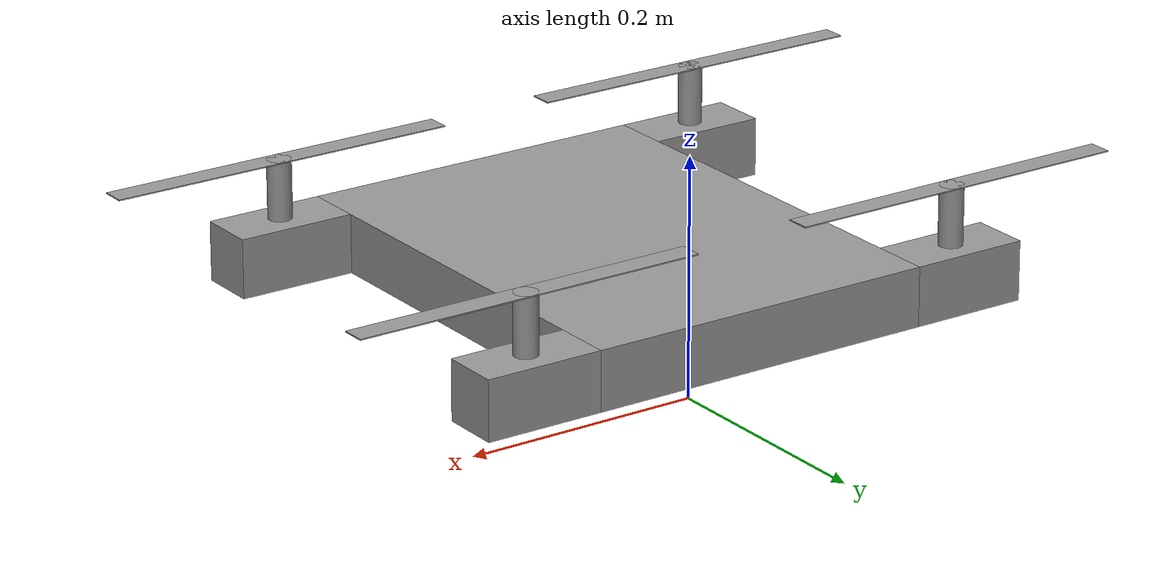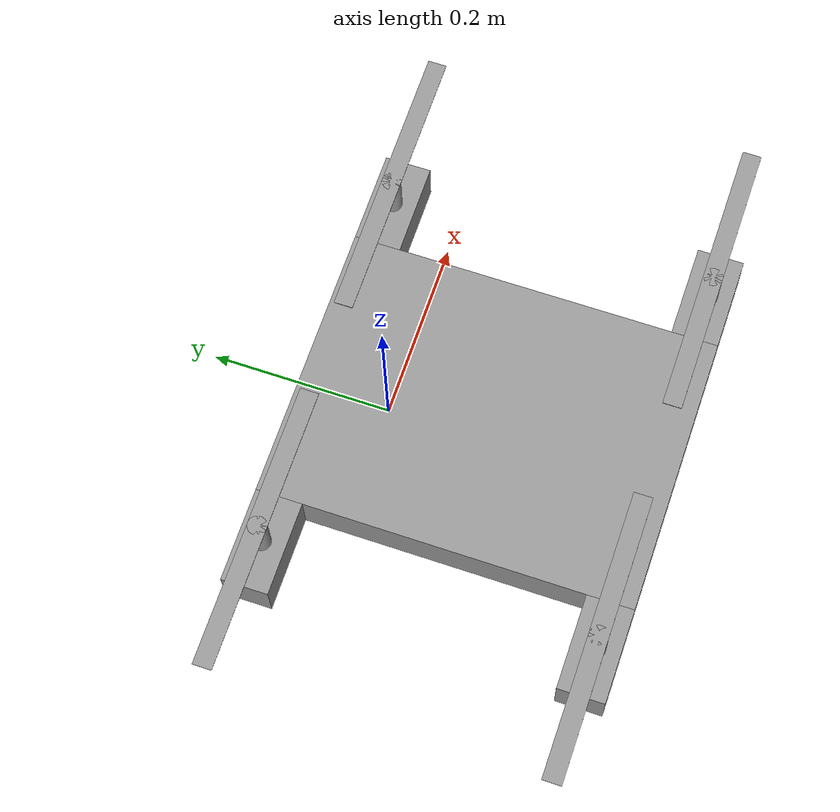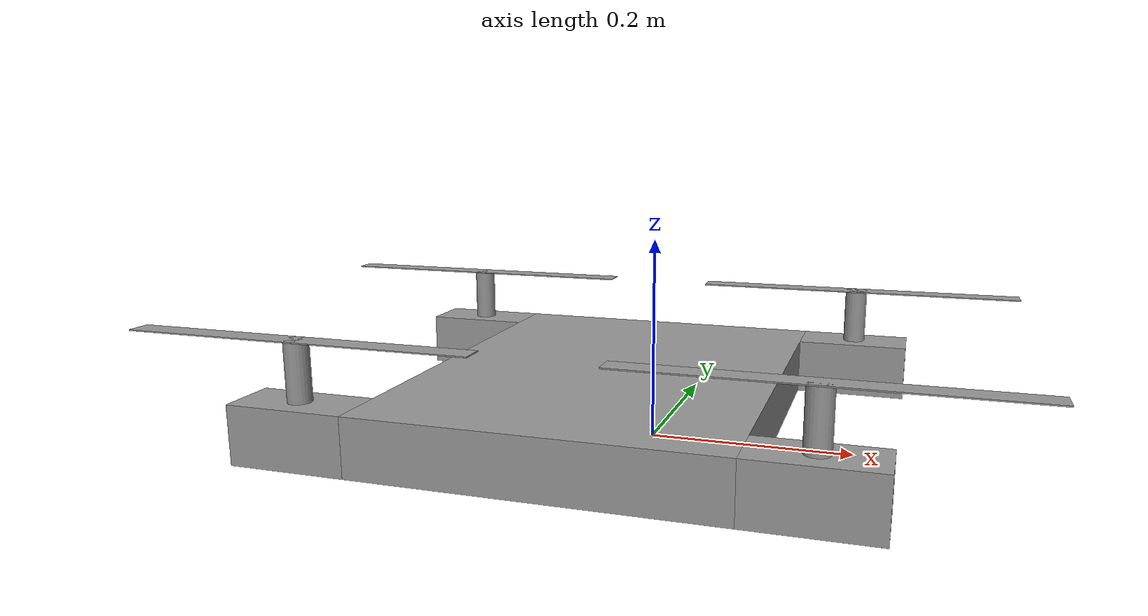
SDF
<?xml version='1.0'?>
<sdf version='1.6'>
  <model name='drone_model1'>
    <link name='link_0'>
      <pose frame=''>-0.009538 -0.116587 0.075926 0 -0 0</pose>
      <inertial>
        <mass>1</mass>
        <inertia>
          <ixx>0.166667</ixx>
          <ixy>0</ixy>
          <ixz>0</ixz>
          <iyy>0.166667</iyy>
          <iyz>0</iyz>
          <izz>0.166667</izz>
        </inertia>
        <pose frame=''>0 0 0 0 -0 0</pose>
      </inertial>
      <self_collide>0</self_collide>
      <kinematic>0</kinematic>
      <visual name='visual'>
        <pose frame=''>0 0 0 0 -0 0</pose>
        <geometry>
          <box>
            <size>0.3 0.4 0.05</size>
          </box>
        </geometry>
        <material>
          <lighting>1</lighting>
          <script>
            <uri>file://media/materials/scripts/gazebo.material</uri>
            <name>Gazebo/Grey</name>
          </script>
          <shader type='pixel'>
            <normal_map>__default__</normal_map>
          </shader>
          <ambient>0.3 0.3 0.3 1</ambient>
          <diffuse>0.7 0.7 0.7 1</diffuse>
          <specular>0.01 0.01 0.01 1</specular>
          <emissive>0 0 0 1</emissive>
        </material>
        <transparency>0</transparency>
        <cast_shadows>1</cast_shadows>
      </visual>
      <collision name='collision'>
        <laser_retro>0</laser_retro>
        <max_contacts>10</max_contacts>
        <pose frame=''>0 0 0 0 -0 0</pose>
        <geometry>
          <box>
            <size>0.3 0.4 0.05</size>
          </box>
        </geometry>
        <surface>
          <friction>
            <ode>
              <mu>1</mu>
              <mu2>1</mu2>
              <fdir1>0 0 0</fdir1>
              <slip1>0</slip1>
              <slip2>0</slip2>
            </ode>
            <torsional>
              <coefficient>1</coefficient>
              <patch_radius>0</patch_radius>
              <surface_radius>0</surface_radius>
              <use_patch_radius>1</use_patch_radius>
              <ode>
                <slip>0</slip>
              </ode>
            </torsional>
          </friction>
          <bounce>
            <restitution_coefficient>0</restitution_coefficient>
            <threshold>1e+06</threshold>
          </bounce>
          <contact>
            <collide_without_contact>0</collide_without_contact>
            <collide_without_contact_bitmask>1</collide_without_contact_bitmask>
            <collide_bitmask>1</collide_bitmask>
            <ode>
              <soft_cfm>0</soft_cfm>
              <soft_erp>0.2</soft_erp>
              <kp>1e+13</kp>
              <kd>1</kd>
              <max_vel>0.01</max_vel>
              <min_depth>0</min_depth>
            </ode>
            <bullet>
              <split_impulse>1</split_impulse>
              <split_impulse_penetration_threshold>-0.01</split_impulse_penetration_threshold>
              <soft_cfm>0</soft_cfm>
              <soft_erp>0.2</soft_erp>
              <kp>1e+13</kp>
              <kd>1</kd>
            </bullet>
          </contact>
        </surface>
      </collision>
    </link>
    <link name='link_0_0'>
      <pose frame=''>-0.209538 -0.291587 0.150426 0 -0 0</pose>
      <inertial>
        <mass>1</mass>
        <inertia>
          <ixx>0.166667</ixx>
          <ixy>0</ixy>
          <ixz>0</ixz>
          <iyy>0.166667</iyy>
          <iyz>0</iyz>
          <izz>0.166667</izz>
        </inertia>
        <pose frame=''>0 0 0 0 -0 0</pose>
      </inertial>
      <self_collide>0</self_collide>
      <kinematic>0</kinematic>
      <visual name='visual'>
        <pose frame=''>0 0 0 0 -0 0</pose>
        <geometry>
          <box>
            <size>0.3 0.02 0.001</size>
          </box>
        </geometry>
        <material>
          <lighting>1</lighting>
          <script>
            <uri>file://media/materials/scripts/gazebo.material</uri>
            <name>Gazebo/Grey</name>
          </script>
          <shader type='pixel'>
            <normal_map>__default__</normal_map>
          </shader>
          <ambient>0.3 0.3 0.3 1</ambient>
          <diffuse>0.7 0.7 0.7 1</diffuse>
          <specular>0.01 0.01 0.01 1</specular>
          <emissive>0 0 0 1</emissive>
        </material>
        <transparency>0</transparency>
        <cast_shadows>1</cast_shadows>
      </visual>
      <collision name='collision'>
        <laser_retro>0</laser_retro>
        <max_contacts>10</max_contacts>
        <pose frame=''>0 0 0 0 -0 0</pose>
        <geometry>
          <box>
            <size>0.3 0.02 0.001</size>
          </box>
        </geometry>
        <surface>
          <friction>
            <ode>
              <mu>1</mu>
              <mu2>1</mu2>
              <fdir1>0 0 0</fdir1>
              <slip1>0</slip1>
              <slip2>0</slip2>
            </ode>
            <torsional>
              <coefficient>1</coefficient>
              <patch_radius>0</patch_radius>
              <surface_radius>0</surface_radius>
              <use_patch_radius>1</use_patch_radius>
              <ode>
                <slip>0</slip>
              </ode>
            </torsional>
          </friction>
          <bounce>
            <restitution_coefficient>0</restitution_coefficient>
            <threshold>1e+06</threshold>
          </bounce>
          <contact>
            <collide_without_contact>0</collide_without_contact>
            <collide_without_contact_bitmask>1</collide_without_contact_bitmask>
            <collide_bitmask>1</collide_bitmask>
            <ode>
              <soft_cfm>0</soft_cfm>
              <soft_erp>0.2</soft_erp>
              <kp>1e+13</kp>
              <kd>1</kd>
              <max_vel>0.01</max_vel>
              <min_depth>0</min_depth>
            </ode>
            <bullet>
              <split_impulse>1</split_impulse>
              <split_impulse_penetration_threshold>-0.01</split_impulse_penetration_threshold>
              <soft_cfm>0</soft_cfm>
              <soft_erp>0.2</soft_erp>
              <kp>1e+13</kp>
              <kd>1</kd>
            </bullet>
          </contact>
        </surface>
      </collision>
    </link>
    <link name='link_0_0_clone'>
      <pose frame=''>0.190462 -0.291587 0.150426 0 -0 0</pose>
      <inertial>
        <mass>1</mass>
        <inertia>
          <ixx>0.166667</ixx>
          <ixy>0</ixy>
          <ixz>0</ixz>
          <iyy>0.166667</iyy>
          <iyz>0</iyz>
          <izz>0.166667</izz>
        </inertia>
        <pose frame=''>0 0 0 0 -0 0</pose>
      </inertial>
      <self_collide>0</self_collide>
      <kinematic>0</kinematic>
      <visual name='visual_0'>
        <pose frame=''>0 0 0 0 -0 0</pose>
        <geometry>
          <box>
            <size>0.3 0.02 0.001</size>
          </box>
        </geometry>
        <material>
          <lighting>1</lighting>
          <script>
            <uri>file://media/materials/scripts/gazebo.material</uri>
            <name>Gazebo/Grey</name>
          </script>
          <shader type='pixel'>
            <normal_map>__default__</normal_map>
          </shader>
          <ambient>0.3 0.3 0.3 1</ambient>
          <diffuse>0.7 0.7 0.7 1</diffuse>
          <specular>0.01 0.01 0.01 1</specular>
          <emissive>0 0 0 1</emissive>
        </material>
        <transparency>0</transparency>
        <cast_shadows>1</cast_shadows>
      </visual>
      <collision name='collision'>
        <laser_retro>0</laser_retro>
        <max_contacts>10</max_contacts>
        <pose frame=''>0 0 0 0 -0 0</pose>
        <geometry>
          <box>
            <size>0.3 0.02 0.001</size>
          </box>
        </geometry>
        <surface>
          <friction>
            <ode>
              <mu>1</mu>
              <mu2>1</mu2>
              <fdir1>0 0 0</fdir1>
              <slip1>0</slip1>
              <slip2>0</slip2>
            </ode>
            <torsional>
              <coefficient>1</coefficient>
              <patch_radius>0</patch_radius>
              <surface_radius>0</surface_radius>
              <use_patch_radius>1</use_patch_radius>
              <ode>
                <slip>0</slip>
              </ode>
            </torsional>
          </friction>
          <bounce>
            <restitution_coefficient>0</restitution_coefficient>
            <threshold>1e+06</threshold>
          </bounce>
          <contact>
            <collide_without_contact>0</collide_without_contact>
            <collide_without_contact_bitmask>1</collide_without_contact_bitmask>
            <collide_bitmask>1</collide_bitmask>
            <ode>
              <soft_cfm>0</soft_cfm>
              <soft_erp>0.2</soft_erp>
              <kp>1e+13</kp>
              <kd>1</kd>
              <max_vel>0.01</max_vel>
              <min_depth>0</min_depth>
            </ode>
            <bullet>
              <split_impulse>1</split_impulse>
              <split_impulse_penetration_threshold>-0.01</split_impulse_penetration_threshold>
              <soft_cfm>0</soft_cfm>
              <soft_erp>0.2</soft_erp>
              <kp>1e+13</kp>
              <kd>1</kd>
            </bullet>
          </contact>
        </surface>
      </collision>
    </link>
    <link name='link_0_0_clone_clone'>
      <pose frame=''>0.190462 0.058413 0.150426 0 -0 0</pose>
      <inertial>
        <mass>1</mass>
        <inertia>
          <ixx>0.166667</ixx>
          <ixy>0</ixy>
          <ixz>0</ixz>
          <iyy>0.166667</iyy>
          <iyz>0</iyz>
          <izz>0.166667</izz>
        </inertia>
        <pose frame=''>0 0 0 0 -0 0</pose>
      </inertial>
      <self_collide>0</self_collide>
      <kinematic>0</kinematic>
      <visual name='visual_0'>
        <pose frame=''>0 0 0 0 -0 0</pose>
        <geometry>
          <box>
            <size>0.3 0.02 0.001</size>
          </box>
        </geometry>
        <material>
          <lighting>1</lighting>
          <script>
            <uri>file://media/materials/scripts/gazebo.material</uri>
            <name>Gazebo/Grey</name>
          </script>
          <shader type='pixel'>
            <normal_map>__default__</normal_map>
          </shader>
          <ambient>0.3 0.3 0.3 1</ambient>
          <diffuse>0.7 0.7 0.7 1</diffuse>
          <specular>0.01 0.01 0.01 1</specular>
          <emissive>0 0 0 1</emissive>
        </material>
        <transparency>0</transparency>
        <cast_shadows>1</cast_shadows>
      </visual>
      <collision name='collision'>
        <laser_retro>0</laser_retro>
        <max_contacts>10</max_contacts>
        <pose frame=''>0 0 0 0 -0 0</pose>
        <geometry>
          <box>
            <size>0.3 0.02 0.001</size>
          </box>
        </geometry>
        <surface>
          <friction>
            <ode>
              <mu>1</mu>
              <mu2>1</mu2>
              <fdir1>0 0 0</fdir1>
              <slip1>0</slip1>
              <slip2>0</slip2>
            </ode>
            <torsional>
              <coefficient>1</coefficient>
              <patch_radius>0</patch_radius>
              <surface_radius>0</surface_radius>
              <use_patch_radius>1</use_patch_radius>
              <ode>
                <slip>0</slip>
              </ode>
            </torsional>
          </friction>
          <bounce>
            <restitution_coefficient>0</restitution_coefficient>
            <threshold>1e+06</threshold>
          </bounce>
          <contact>
            <collide_without_contact>0</collide_without_contact>
            <collide_without_contact_bitmask>1</collide_without_contact_bitmask>
            <collide_bitmask>1</collide_bitmask>
            <ode>
              <soft_cfm>0</soft_cfm>
              <soft_erp>0.2</soft_erp>
              <kp>1e+13</kp>
              <kd>1</kd>
              <max_vel>0.01</max_vel>
              <min_depth>0</min_depth>
            </ode>
            <bullet>
              <split_impulse>1</split_impulse>
              <split_impulse_penetration_threshold>-0.01</split_impulse_penetration_threshold>
              <soft_cfm>0</soft_cfm>
              <soft_erp>0.2</soft_erp>
              <kp>1e+13</kp>
              <kd>1</kd>
            </bullet>
          </contact>
        </surface>
      </collision>
    </link>
    <link name='link_0_0_clone_clone_0'>
      <pose frame=''>-0.209538 0.058413 0.150426 0 -0 0</pose>
      <inertial>
        <mass>1</mass>
        <inertia>
          <ixx>0.166667</ixx>
          <ixy>0</ixy>
          <ixz>0</ixz>
          <iyy>0.166667</iyy>
          <iyz>0</iyz>
          <izz>0.166667</izz>
        </inertia>
        <pose frame=''>0 0 0 0 -0 0</pose>
      </inertial>
      <self_collide>0</self_collide>
      <kinematic>0</kinematic>
      <visual name='visual_0'>
        <pose frame=''>0 0 0 0 -0 0</pose>
        <geometry>
          <box>
            <size>0.3 0.02 0.001</size>
          </box>
        </geometry>
        <material>
          <lighting>1</lighting>
          <script>
            <uri>file://media/materials/scripts/gazebo.material</uri>
            <name>Gazebo/Grey</name>
          </script>
          <shader type='pixel'>
            <normal_map>__default__</normal_map>
          </shader>
          <ambient>0.3 0.3 0.3 1</ambient>
          <diffuse>0.7 0.7 0.7 1</diffuse>
          <specular>0.01 0.01 0.01 1</specular>
          <emissive>0 0 0 1</emissive>
        </material>
        <transparency>0</transparency>
        <cast_shadows>1</cast_shadows>
      </visual>
      <collision name='collision'>
        <laser_retro>0</laser_retro>
        <max_contacts>10</max_contacts>
        <pose frame=''>0 0 0 0 -0 0</pose>
        <geometry>
          <box>
            <size>0.3 0.02 0.001</size>
          </box>
        </geometry>
        <surface>
          <friction>
            <ode>
              <mu>1</mu>
              <mu2>1</mu2>
              <fdir1>0 0 0</fdir1>
              <slip1>0</slip1>
              <slip2>0</slip2>
            </ode>
            <torsional>
              <coefficient>1</coefficient>
              <patch_radius>0</patch_radius>
              <surface_radius>0</surface_radius>
              <use_patch_radius>1</use_patch_radius>
              <ode>
                <slip>0</slip>
              </ode>
            </torsional>
          </friction>
          <bounce>
            <restitution_coefficient>0</restitution_coefficient>
            <threshold>1e+06</threshold>
          </bounce>
          <contact>
            <collide_without_contact>0</collide_without_contact>
            <collide_without_contact_bitmask>1</collide_without_contact_bitmask>
            <collide_bitmask>1</collide_bitmask>
            <ode>
              <soft_cfm>0</soft_cfm>
              <soft_erp>0.2</soft_erp>
              <kp>1e+13</kp>
              <kd>1</kd>
              <max_vel>0.01</max_vel>
              <min_depth>0</min_depth>
            </ode>
            <bullet>
              <split_impulse>1</split_impulse>
              <split_impulse_penetration_threshold>-0.01</split_impulse_penetration_threshold>
              <soft_cfm>0</soft_cfm>
              <soft_erp>0.2</soft_erp>
              <kp>1e+13</kp>
              <kd>1</kd>
            </bullet>
          </contact>
        </surface>
      </collision>
    </link>
    <link name='link_1'>
      <pose frame=''>0.190462 -0.291587 0.075926 0 -0 0</pose>
      <inertial>
        <mass>1</mass>
        <inertia>
          <ixx>0.166667</ixx>
          <ixy>0</ixy>
          <ixz>0</ixz>
          <iyy>0.166667</iyy>
          <iyz>0</iyz>
          <izz>0.166667</izz>
        </inertia>
        <pose frame=''>0 0 0 0 -0 0</pose>
      </inertial>
      <self_collide>0</self_collide>
      <kinematic>0</kinematic>
      <visual name='visual'>
        <pose frame=''>0 0 0 0 -0 0</pose>
        <geometry>
          <box>
            <size>0.1 0.05 0.05</size>
          </box>
        </geometry>
        <material>
          <lighting>1</lighting>
          <script>
            <uri>file://media/materials/scripts/gazebo.material</uri>
            <name>Gazebo/Grey</name>
          </script>
          <shader type='pixel'>
            <normal_map>__default__</normal_map>
          </shader>
          <ambient>0.3 0.3 0.3 1</ambient>
          <diffuse>0.7 0.7 0.7 1</diffuse>
          <specular>0.01 0.01 0.01 1</specular>
          <emissive>0 0 0 1</emissive>
        </material>
        <transparency>0</transparency>
        <cast_shadows>1</cast_shadows>
      </visual>
      <collision name='collision'>
        <laser_retro>0</laser_retro>
        <max_contacts>10</max_contacts>
        <pose frame=''>0 0 0 0 -0 0</pose>
        <geometry>
          <box>
            <size>0.1 0.05 0.05</size>
          </box>
        </geometry>
        <surface>
          <friction>
            <ode>
              <mu>1</mu>
              <mu2>1</mu2>
              <fdir1>0 0 0</fdir1>
              <slip1>0</slip1>
              <slip2>0</slip2>
            </ode>
            <torsional>
              <coefficient>1</coefficient>
              <patch_radius>0</patch_radius>
              <surface_radius>0</surface_radius>
              <use_patch_radius>1</use_patch_radius>
              <ode>
                <slip>0</slip>
              </ode>
            </torsional>
          </friction>
          <bounce>
            <restitution_coefficient>0</restitution_coefficient>
            <threshold>1e+06</threshold>
          </bounce>
          <contact>
            <collide_without_contact>0</collide_without_contact>
            <collide_without_contact_bitmask>1</collide_without_contact_bitmask>
            <collide_bitmask>1</collide_bitmask>
            <ode>
              <soft_cfm>0</soft_cfm>
              <soft_erp>0.2</soft_erp>
              <kp>1e+13</kp>
              <kd>1</kd>
              <max_vel>0.01</max_vel>
              <min_depth>0</min_depth>
            </ode>
            <bullet>
              <split_impulse>1</split_impulse>
              <split_impulse_penetration_threshold>-0.01</split_impulse_penetration_threshold>
              <soft_cfm>0</soft_cfm>
              <soft_erp>0.2</soft_erp>
              <kp>1e+13</kp>
              <kd>1</kd>
            </bullet>
          </contact>
        </surface>
      </collision>
    </link>
    <link name='link_1_clone'>
      <pose frame=''>-0.209538 -0.291587 0.075926 0 -0 0</pose>
      <inertial>
        <mass>1</mass>
        <inertia>
          <ixx>0.166667</ixx>
          <ixy>0</ixy>
          <ixz>0</ixz>
          <iyy>0.166667</iyy>
          <iyz>0</iyz>
          <izz>0.166667</izz>
        </inertia>
        <pose frame=''>0 0 0 0 -0 0</pose>
      </inertial>
      <self_collide>0</self_collide>
      <kinematic>0</kinematic>
      <visual name='visual'>
        <pose frame=''>0 0 0 0 -0 0</pose>
        <geometry>
          <box>
            <size>0.1 0.05 0.05</size>
          </box>
        </geometry>
        <material>
          <lighting>1</lighting>
          <script>
            <uri>file://media/materials/scripts/gazebo.material</uri>
            <name>Gazebo/Grey</name>
          </script>
          <shader type='pixel'>
            <normal_map>__default__</normal_map>
          </shader>
          <ambient>0.3 0.3 0.3 1</ambient>
          <diffuse>0.7 0.7 0.7 1</diffuse>
          <specular>0.01 0.01 0.01 1</specular>
          <emissive>0 0 0 1</emissive>
        </material>
        <transparency>0</transparency>
        <cast_shadows>1</cast_shadows>
      </visual>
      <collision name='collision'>
        <laser_retro>0</laser_retro>
        <max_contacts>10</max_contacts>
        <pose frame=''>0 0 0 0 -0 0</pose>
        <geometry>
          <box>
            <size>0.1 0.05 0.05</size>
          </box>
        </geometry>
        <surface>
          <friction>
            <ode>
              <mu>1</mu>
              <mu2>1</mu2>
              <fdir1>0 0 0</fdir1>
              <slip1>0</slip1>
              <slip2>0</slip2>
            </ode>
            <torsional>
              <coefficient>1</coefficient>
              <patch_radius>0</patch_radius>
              <surface_radius>0</surface_radius>
              <use_patch_radius>1</use_patch_radius>
              <ode>
                <slip>0</slip>
              </ode>
            </torsional>
          </friction>
          <bounce>
            <restitution_coefficient>0</restitution_coefficient>
            <threshold>1e+06</threshold>
          </bounce>
          <contact>
            <collide_without_contact>0</collide_without_contact>
            <collide_without_contact_bitmask>1</collide_without_contact_bitmask>
            <collide_bitmask>1</collide_bitmask>
            <ode>
              <soft_cfm>0</soft_cfm>
              <soft_erp>0.2</soft_erp>
              <kp>1e+13</kp>
              <kd>1</kd>
              <max_vel>0.01</max_vel>
              <min_depth>0</min_depth>
            </ode>
            <bullet>
              <split_impulse>1</split_impulse>
              <split_impulse_penetration_threshold>-0.01</split_impulse_penetration_threshold>
              <soft_cfm>0</soft_cfm>
              <soft_erp>0.2</soft_erp>
              <kp>1e+13</kp>
              <kd>1</kd>
            </bullet>
          </contact>
        </surface>
      </collision>
    </link>
    <link name='link_1_clone_0'>
      <pose frame=''>-0.209538 0.058413 0.075926 0 -0 0</pose>
      <inertial>
        <mass>1</mass>
        <inertia>
          <ixx>0.166667</ixx>
          <ixy>0</ixy>
          <ixz>0</ixz>
          <iyy>0.166667</iyy>
          <iyz>0</iyz>
          <izz>0.166667</izz>
        </inertia>
        <pose frame=''>0 0 0 0 -0 0</pose>
      </inertial>
      <self_collide>0</self_collide>
      <kinematic>0</kinematic>
      <visual name='visual'>
        <pose frame=''>0 0 0 0 -0 0</pose>
        <geometry>
          <box>
            <size>0.1 0.05 0.05</size>
          </box>
        </geometry>
        <material>
          <lighting>1</lighting>
          <script>
            <uri>file://media/materials/scripts/gazebo.material</uri>
            <name>Gazebo/Grey</name>
          </script>
          <shader type='pixel'>
            <normal_map>__default__</normal_map>
          </shader>
          <ambient>0.3 0.3 0.3 1</ambient>
          <diffuse>0.7 0.7 0.7 1</diffuse>
          <specular>0.01 0.01 0.01 1</specular>
          <emissive>0 0 0 1</emissive>
        </material>
        <transparency>0</transparency>
        <cast_shadows>1</cast_shadows>
      </visual>
      <collision name='collision'>
        <laser_retro>0</laser_retro>
        <max_contacts>10</max_contacts>
        <pose frame=''>0 0 0 0 -0 0</pose>
        <geometry>
          <box>
            <size>0.1 0.05 0.05</size>
          </box>
        </geometry>
        <surface>
          <friction>
            <ode>
              <mu>1</mu>
              <mu2>1</mu2>
              <fdir1>0 0 0</fdir1>
              <slip1>0</slip1>
              <slip2>0</slip2>
            </ode>
            <torsional>
              <coefficient>1</coefficient>
              <patch_radius>0</patch_radius>
              <surface_radius>0</surface_radius>
              <use_patch_radius>1</use_patch_radius>
              <ode>
                <slip>0</slip>
              </ode>
            </torsional>
          </friction>
          <bounce>
            <restitution_coefficient>0</restitution_coefficient>
            <threshold>1e+06</threshold>
          </bounce>
          <contact>
            <collide_without_contact>0</collide_without_contact>
            <collide_without_contact_bitmask>1</collide_without_contact_bitmask>
            <collide_bitmask>1</collide_bitmask>
            <ode>
              <soft_cfm>0</soft_cfm>
              <soft_erp>0.2</soft_erp>
              <kp>1e+13</kp>
              <kd>1</kd>
              <max_vel>0.01</max_vel>
              <min_depth>0</min_depth>
            </ode>
            <bullet>
              <split_impulse>1</split_impulse>
              <split_impulse_penetration_threshold>-0.01</split_impulse_penetration_threshold>
              <soft_cfm>0</soft_cfm>
              <soft_erp>0.2</soft_erp>
              <kp>1e+13</kp>
              <kd>1</kd>
            </bullet>
          </contact>
        </surface>
      </collision>
    </link>
    <link name='link_1_clone_1'>
      <pose frame=''>0.190462 0.058413 0.075926 0 -0 0</pose>
      <inertial>
        <mass>1</mass>
        <inertia>
          <ixx>0.166667</ixx>
          <ixy>0</ixy>
          <ixz>0</ixz>
          <iyy>0.166667</iyy>
          <iyz>0</iyz>
          <izz>0.166667</izz>
        </inertia>
        <pose frame=''>0 0 0 0 -0 0</pose>
      </inertial>
      <self_collide>0</self_collide>
      <kinematic>0</kinematic>
      <visual name='visual'>
        <pose frame=''>0 0 0 0 -0 0</pose>
        <geometry>
          <box>
            <size>0.1 0.05 0.05</size>
          </box>
        </geometry>
        <material>
          <lighting>1</lighting>
          <script>
            <uri>file://media/materials/scripts/gazebo.material</uri>
            <name>Gazebo/Grey</name>
          </script>
          <shader type='pixel'>
            <normal_map>__default__</normal_map>
          </shader>
          <ambient>0.3 0.3 0.3 1</ambient>
          <diffuse>0.7 0.7 0.7 1</diffuse>
          <specular>0.01 0.01 0.01 1</specular>
          <emissive>0 0 0 1</emissive>
        </material>
        <transparency>0</transparency>
        <cast_shadows>1</cast_shadows>
      </visual>
      <collision name='collision'>
        <laser_retro>0</laser_retro>
        <max_contacts>10</max_contacts>
        <pose frame=''>0 0 0 0 -0 0</pose>
        <geometry>
          <box>
            <size>0.1 0.05 0.05</size>
          </box>
        </geometry>
        <surface>
          <friction>
            <ode>
              <mu>1</mu>
              <mu2>1</mu2>
              <fdir1>0 0 0</fdir1>
              <slip1>0</slip1>
              <slip2>0</slip2>
            </ode>
            <torsional>
              <coefficient>1</coefficient>
              <patch_radius>0</patch_radius>
              <surface_radius>0</surface_radius>
              <use_patch_radius>1</use_patch_radius>
              <ode>
                <slip>0</slip>
              </ode>
            </torsional>
          </friction>
          <bounce>
            <restitution_coefficient>0</restitution_coefficient>
            <threshold>1e+06</threshold>
          </bounce>
          <contact>
            <collide_without_contact>0</collide_without_contact>
            <collide_without_contact_bitmask>1</collide_without_contact_bitmask>
            <collide_bitmask>1</collide_bitmask>
            <ode>
              <soft_cfm>0</soft_cfm>
              <soft_erp>0.2</soft_erp>
              <kp>1e+13</kp>
              <kd>1</kd>
              <max_vel>0.01</max_vel>
              <min_depth>0</min_depth>
            </ode>
            <bullet>
              <split_impulse>1</split_impulse>
              <split_impulse_penetration_threshold>-0.01</split_impulse_penetration_threshold>
              <soft_cfm>0</soft_cfm>
              <soft_erp>0.2</soft_erp>
              <kp>1e+13</kp>
              <kd>1</kd>
            </bullet>
          </contact>
        </surface>
      </collision>
    </link>
    <link name='link_2'>
      <pose frame=''>0.190462 -0.291587 0.125926 0 -0 0</pose>
      <inertial>
        <mass>1</mass>
        <inertia>
          <ixx>0.145833</ixx>
          <ixy>0</ixy>
          <ixz>0</ixz>
          <iyy>0.145833</iyy>
          <iyz>0</iyz>
          <izz>0.125</izz>
        </inertia>
        <pose frame=''>0 0 0 0 -0 0</pose>
      </inertial>
      <self_collide>0</self_collide>
      <kinematic>0</kinematic>
      <visual name='visual'>
        <pose frame=''>0 0 0 0 -0 0</pose>
        <geometry>
          <cylinder>
            <radius>0.01</radius>
            <length>0.05</length>
          </cylinder>
        </geometry>
        <material>
          <lighting>1</lighting>
          <script>
            <uri>file://media/materials/scripts/gazebo.material</uri>
            <name>Gazebo/Grey</name>
          </script>
          <shader type='pixel'>
            <normal_map>__default__</normal_map>
          </shader>
          <ambient>0.3 0.3 0.3 1</ambient>
          <diffuse>0.7 0.7 0.7 1</diffuse>
          <specular>0.01 0.01 0.01 1</specular>
          <emissive>0 0 0 1</emissive>
        </material>
        <transparency>0</transparency>
        <cast_shadows>1</cast_shadows>
      </visual>
      <collision name='collision'>
        <laser_retro>0</laser_retro>
        <max_contacts>10</max_contacts>
        <pose frame=''>0 0 0 0 -0 0</pose>
        <geometry>
          <cylinder>
            <radius>0.01</radius>
            <length>0.05</length>
          </cylinder>
        </geometry>
        <surface>
          <friction>
            <ode>
              <mu>1</mu>
              <mu2>1</mu2>
              <fdir1>0 0 0</fdir1>
              <slip1>0</slip1>
              <slip2>0</slip2>
            </ode>
            <torsional>
              <coefficient>1</coefficient>
              <patch_radius>0</patch_radius>
              <surface_radius>0</surface_radius>
              <use_patch_radius>1</use_patch_radius>
              <ode>
                <slip>0</slip>
              </ode>
            </torsional>
          </friction>
          <bounce>
            <restitution_coefficient>0</restitution_coefficient>
            <threshold>1e+06</threshold>
          </bounce>
          <contact>
            <collide_without_contact>0</collide_without_contact>
            <collide_without_contact_bitmask>1</collide_without_contact_bitmask>
            <collide_bitmask>1</collide_bitmask>
            <ode>
              <soft_cfm>0</soft_cfm>
              <soft_erp>0.2</soft_erp>
              <kp>1e+13</kp>
              <kd>1</kd>
              <max_vel>0.01</max_vel>
              <min_depth>0</min_depth>
            </ode>
            <bullet>
              <split_impulse>1</split_impulse>
              <split_impulse_penetration_threshold>-0.01</split_impulse_penetration_threshold>
              <soft_cfm>0</soft_cfm>
              <soft_erp>0.2</soft_erp>
              <kp>1e+13</kp>
              <kd>1</kd>
            </bullet>
          </contact>
        </surface>
      </collision>
    </link>
    <link name='link_2_clone'>
      <pose frame=''>-0.209538 0.058413 0.125926 0 -0 0</pose>
      <inertial>
        <mass>1</mass>
        <inertia>
          <ixx>0.145833</ixx>
          <ixy>0</ixy>
          <ixz>0</ixz>
          <iyy>0.145833</iyy>
          <iyz>0</iyz>
          <izz>0.125</izz>
        </inertia>
        <pose frame=''>0 0 0 0 -0 0</pose>
      </inertial>
      <self_collide>0</self_collide>
      <kinematic>0</kinematic>
      <visual name='visual'>
        <pose frame=''>0 0 0 0 -0 0</pose>
        <geometry>
          <cylinder>
            <radius>0.01</radius>
            <length>0.05</length>
          </cylinder>
        </geometry>
        <material>
          <lighting>1</lighting>
          <script>
            <uri>file://media/materials/scripts/gazebo.material</uri>
            <name>Gazebo/Grey</name>
          </script>
          <shader type='pixel'>
            <normal_map>__default__</normal_map>
          </shader>
          <ambient>0.3 0.3 0.3 1</ambient>
          <diffuse>0.7 0.7 0.7 1</diffuse>
          <specular>0.01 0.01 0.01 1</specular>
          <emissive>0 0 0 1</emissive>
        </material>
        <transparency>0</transparency>
        <cast_shadows>1</cast_shadows>
      </visual>
      <collision name='collision'>
        <laser_retro>0</laser_retro>
        <max_contacts>10</max_contacts>
        <pose frame=''>0 0 0 0 -0 0</pose>
        <geometry>
          <cylinder>
            <radius>0.01</radius>
            <length>0.05</length>
          </cylinder>
        </geometry>
        <surface>
          <friction>
            <ode>
              <mu>1</mu>
              <mu2>1</mu2>
              <fdir1>0 0 0</fdir1>
              <slip1>0</slip1>
              <slip2>0</slip2>
            </ode>
            <torsional>
              <coefficient>1</coefficient>
              <patch_radius>0</patch_radius>
              <surface_radius>0</surface_radius>
              <use_patch_radius>1</use_patch_radius>
              <ode>
                <slip>0</slip>
              </ode>
            </torsional>
          </friction>
          <bounce>
            <restitution_coefficient>0</restitution_coefficient>
            <threshold>1e+06</threshold>
          </bounce>
          <contact>
            <collide_without_contact>0</collide_without_contact>
            <collide_without_contact_bitmask>1</collide_without_contact_bitmask>
            <collide_bitmask>1</collide_bitmask>
            <ode>
              <soft_cfm>0</soft_cfm>
              <soft_erp>0.2</soft_erp>
              <kp>1e+13</kp>
              <kd>1</kd>
              <max_vel>0.01</max_vel>
              <min_depth>0</min_depth>
            </ode>
            <bullet>
              <split_impulse>1</split_impulse>
              <split_impulse_penetration_threshold>-0.01</split_impulse_penetration_threshold>
              <soft_cfm>0</soft_cfm>
              <soft_erp>0.2</soft_erp>
              <kp>1e+13</kp>
              <kd>1</kd>
            </bullet>
          </contact>
        </surface>
      </collision>
    </link>
    <link name='link_2_clone_0'>
      <pose frame=''>0.190462 0.058413 0.125926 0 -0 0</pose>
      <inertial>
        <mass>1</mass>
        <inertia>
          <ixx>0.145833</ixx>
          <ixy>0</ixy>
          <ixz>0</ixz>
          <iyy>0.145833</iyy>
          <iyz>0</iyz>
          <izz>0.125</izz>
        </inertia>
        <pose frame=''>0 0 0 0 -0 0</pose>
      </inertial>
      <self_collide>0</self_collide>
      <kinematic>0</kinematic>
      <visual name='visual'>
        <pose frame=''>0 0 0 0 -0 0</pose>
        <geometry>
          <cylinder>
            <radius>0.01</radius>
            <length>0.05</length>
          </cylinder>
        </geometry>
        <material>
          <lighting>1</lighting>
          <script>
            <uri>file://media/materials/scripts/gazebo.material</uri>
            <name>Gazebo/Grey</name>
          </script>
          <shader type='pixel'>
            <normal_map>__default__</normal_map>
          </shader>
          <ambient>0.3 0.3 0.3 1</ambient>
          <diffuse>0.7 0.7 0.7 1</diffuse>
          <specular>0.01 0.01 0.01 1</specular>
          <emissive>0 0 0 1</emissive>
        </material>
        <transparency>0</transparency>
        <cast_shadows>1</cast_shadows>
      </visual>
      <collision name='collision'>
        <laser_retro>0</laser_retro>
        <max_contacts>10</max_contacts>
        <pose frame=''>0 0 0 0 -0 0</pose>
        <geometry>
          <cylinder>
            <radius>0.01</radius>
            <length>0.05</length>
          </cylinder>
        </geometry>
        <surface>
          <friction>
            <ode>
              <mu>1</mu>
              <mu2>1</mu2>
              <fdir1>0 0 0</fdir1>
              <slip1>0</slip1>
              <slip2>0</slip2>
            </ode>
            <torsional>
              <coefficient>1</coefficient>
              <patch_radius>0</patch_radius>
              <surface_radius>0</surface_radius>
              <use_patch_radius>1</use_patch_radius>
              <ode>
                <slip>0</slip>
              </ode>
            </torsional>
          </friction>
          <bounce>
            <restitution_coefficient>0</restitution_coefficient>
            <threshold>1e+06</threshold>
          </bounce>
          <contact>
            <collide_without_contact>0</collide_without_contact>
            <collide_without_contact_bitmask>1</collide_without_contact_bitmask>
            <collide_bitmask>1</collide_bitmask>
            <ode>
              <soft_cfm>0</soft_cfm>
              <soft_erp>0.2</soft_erp>
              <kp>1e+13</kp>
              <kd>1</kd>
              <max_vel>0.01</max_vel>
              <min_depth>0</min_depth>
            </ode>
            <bullet>
              <split_impulse>1</split_impulse>
              <split_impulse_penetration_threshold>-0.01</split_impulse_penetration_threshold>
              <soft_cfm>0</soft_cfm>
              <soft_erp>0.2</soft_erp>
              <kp>1e+13</kp>
              <kd>1</kd>
            </bullet>
          </contact>
        </surface>
      </collision>
    </link>
    <link name='link_2_clone_1'>
      <pose frame=''>-0.209538 -0.291587 0.125926 0 -0 0</pose>
      <inertial>
        <mass>1</mass>
        <inertia>
          <ixx>0.145833</ixx>
          <ixy>0</ixy>
          <ixz>0</ixz>
          <iyy>0.145833</iyy>
          <iyz>0</iyz>
          <izz>0.125</izz>
        </inertia>
        <pose frame=''>0 0 0 0 -0 0</pose>
      </inertial>
      <self_collide>0</self_collide>
      <kinematic>0</kinematic>
      <visual name='visual'>
        <pose frame=''>0 0 0 0 -0 0</pose>
        <geometry>
          <cylinder>
            <radius>0.01</radius>
            <length>0.05</length>
          </cylinder>
        </geometry>
        <material>
          <lighting>1</lighting>
          <script>
            <uri>file://media/materials/scripts/gazebo.material</uri>
            <name>Gazebo/Grey</name>
          </script>
          <shader type='pixel'>
            <normal_map>__default__</normal_map>
          </shader>
          <ambient>0.3 0.3 0.3 1</ambient>
          <diffuse>0.7 0.7 0.7 1</diffuse>
          <specular>0.01 0.01 0.01 1</specular>
          <emissive>0 0 0 1</emissive>
        </material>
        <transparency>0</transparency>
        <cast_shadows>1</cast_shadows>
      </visual>
      <collision name='collision'>
        <laser_retro>0</laser_retro>
        <max_contacts>10</max_contacts>
        <pose frame=''>0 0 0 0 -0 0</pose>
        <geometry>
          <cylinder>
            <radius>0.01</radius>
            <length>0.05</length>
          </cylinder>
        </geometry>
        <surface>
          <friction>
            <ode>
              <mu>1</mu>
              <mu2>1</mu2>
              <fdir1>0 0 0</fdir1>
              <slip1>0</slip1>
              <slip2>0</slip2>
            </ode>
            <torsional>
              <coefficient>1</coefficient>
              <patch_radius>0</patch_radius>
              <surface_radius>0</surface_radius>
              <use_patch_radius>1</use_patch_radius>
              <ode>
                <slip>0</slip>
              </ode>
            </torsional>
          </friction>
          <bounce>
            <restitution_coefficient>0</restitution_coefficient>
            <threshold>1e+06</threshold>
          </bounce>
          <contact>
            <collide_without_contact>0</collide_without_contact>
            <collide_without_contact_bitmask>1</collide_without_contact_bitmask>
            <collide_bitmask>1</collide_bitmask>
            <ode>
              <soft_cfm>0</soft_cfm>
              <soft_erp>0.2</soft_erp>
              <kp>1e+13</kp>
              <kd>1</kd>
              <max_vel>0.01</max_vel>
              <min_depth>0</min_depth>
            </ode>
            <bullet>
              <split_impulse>1</split_impulse>
              <split_impulse_penetration_threshold>-0.01</split_impulse_penetration_threshold>
              <soft_cfm>0</soft_cfm>
              <soft_erp>0.2</soft_erp>
              <kp>1e+13</kp>
              <kd>1</kd>
            </bullet>
          </contact>
        </surface>
      </collision>
    </link>
    <joint name='link_0_JOINT_5' type='fixed'>
      <parent>link_0</parent>
      <child>link_1</child>
      <pose frame=''>0 0 0 0 -0 0</pose>
      <physics>
        <ode>
          <limit>
            <cfm>0</cfm>
            <erp>0.2</erp>
          </limit>
          <suspension>
            <cfm>0</cfm>
            <erp>0.2</erp>
          </suspension>
        </ode>
      </physics>
    </joint>
    <joint name='link_0_JOINT_7' type='fixed'>
      <parent>link_0</parent>
      <child>link_1_clone_1</child>
      <pose frame=''>0 0 0 0 -0 0</pose>
      <physics>
        <ode>
          <limit>
            <cfm>0</cfm>
            <erp>0.2</erp>
          </limit>
          <suspension>
            <cfm>0</cfm>
            <erp>0.2</erp>
          </suspension>
        </ode>
      </physics>
    </joint>
    <joint name='link_0_JOINT_8' type='fixed'>
      <parent>link_0</parent>
      <child>link_1_clone_0</child>
      <pose frame=''>0 0 0 0 -0 0</pose>
      <physics>
        <ode>
          <limit>
            <cfm>0</cfm>
            <erp>0.2</erp>
          </limit>
          <suspension>
            <cfm>0</cfm>
            <erp>0.2</erp>
          </suspension>
        </ode>
      </physics>
    </joint>
    <joint name='link_0_JOINT_9' type='fixed'>
      <parent>link_0</parent>
      <child>link_1_clone</child>
      <pose frame=''>0 0 0 0 -0 0</pose>
      <physics>
        <ode>
          <limit>
            <cfm>0</cfm>
            <erp>0.2</erp>
          </limit>
          <suspension>
            <cfm>0</cfm>
            <erp>0.2</erp>
          </suspension>
        </ode>
      </physics>
    </joint>
    <joint name='link_1_JOINT_6' type='fixed'>
      <parent>link_1</parent>
      <child>link_2</child>
      <pose frame=''>0 0 0 0 -0 0</pose>
      <physics>
        <ode>
          <limit>
            <cfm>0</cfm>
            <erp>0.2</erp>
          </limit>
          <suspension>
            <cfm>0</cfm>
            <erp>0.2</erp>
          </suspension>
        </ode>
      </physics>
    </joint>
    <joint name='link_1_clone_0_JOINT_11' type='fixed'>
      <parent>link_1_clone_0</parent>
      <child>link_2_clone</child>
      <pose frame=''>0 0 0 0 -0 0</pose>
      <physics>
        <ode>
          <limit>
            <cfm>0</cfm>
            <erp>0.2</erp>
          </limit>
          <suspension>
            <cfm>0</cfm>
            <erp>0.2</erp>
          </suspension>
        </ode>
      </physics>
    </joint>
    <joint name='link_1_clone_1_JOINT_12' type='fixed'>
      <parent>link_1_clone_1</parent>
      <child>link_2_clone_0</child>
      <pose frame=''>0 0 0 0 -0 0</pose>
      <physics>
        <ode>
          <limit>
            <cfm>0</cfm>
            <erp>0.2</erp>
          </limit>
          <suspension>
            <cfm>0</cfm>
            <erp>0.2</erp>
          </suspension>
        </ode>
      </physics>
    </joint>
    <joint name='link_1_clone_JOINT_10' type='fixed'>
      <parent>link_1_clone</parent>
      <child>link_2_clone_1</child>
      <pose frame=''>0 0 0 0 -0 0</pose>
      <physics>
        <ode>
          <limit>
            <cfm>0</cfm>
            <erp>0.2</erp>
          </limit>
          <suspension>
            <cfm>0</cfm>
            <erp>0.2</erp>
          </suspension>
        </ode>
      </physics>
    </joint>
    <joint name='link_2_clone_0_JOINT_3' type='revolute'>
      <parent>link_2_clone_0</parent>
      <child>link_0_0_clone_clone</child>
      <pose frame=''>0 0 0 0 -0 0</pose>
      <axis>
        <xyz>0 0 1</xyz>
        <use_parent_model_frame>0</use_parent_model_frame>
        <limit>
          <lower>-1.79769e+308</lower>
          <upper>1.79769e+308</upper>
          <effort>-1</effort>
          <velocity>-1</velocity>
        </limit>
        <dynamics>
          <spring_reference>0</spring_reference>
          <spring_stiffness>0</spring_stiffness>
          <damping>0</damping>
          <friction>0</friction>
        </dynamics>
      </axis>
      <physics>
        <ode>
          <limit>
            <cfm>0</cfm>
            <erp>0.2</erp>
          </limit>
          <suspension>
            <cfm>0</cfm>
            <erp>0.2</erp>
          </suspension>
        </ode>
      </physics>
    </joint>
    <joint name='link_2_clone_1_JOINT_4' type='revolute'>
      <parent>link_2_clone_1</parent>
      <child>link_0_0</child>
      <pose frame=''>0 0 0 0 -0 0</pose>
      <axis>
        <xyz>0 0 1</xyz>
        <use_parent_model_frame>0</use_parent_model_frame>
        <limit>
          <lower>-1.79769e+308</lower>
          <upper>1.79769e+308</upper>
          <effort>-1</effort>
          <velocity>-1</velocity>
        </limit>
        <dynamics>
          <spring_reference>0</spring_reference>
          <spring_stiffness>0</spring_stiffness>
          <damping>0</damping>
          <friction>0</friction>
        </dynamics>
      </axis>
      <physics>
        <ode>
          <limit>
            <cfm>0</cfm>
            <erp>0.2</erp>
          </limit>
          <suspension>
            <cfm>0</cfm>
            <erp>0.2</erp>
          </suspension>
        </ode>
      </physics>
    </joint>
    <joint name='link_2_clone_JOINT_1' type='revolute'>
      <parent>link_2</parent>
      <child>link_0_0_clone</child>
      <pose frame=''>0 0 0 0 -0 0</pose>
      <axis>
        <xyz>0 0 1</xyz>
        <use_parent_model_frame>0</use_parent_model_frame>
        <limit>
          <lower>-1.79769e+308</lower>
          <upper>1.79769e+308</upper>
          <effort>-1</effort>
          <velocity>-1</velocity>
        </limit>
        <dynamics>
          <spring_reference>0</spring_reference>
          <spring_stiffness>0</spring_stiffness>
          <damping>0</damping>
          <friction>0</friction>
        </dynamics>
      </axis>
      <physics>
        <ode>
          <limit>
            <cfm>0</cfm>
            <erp>0.2</erp>
          </limit>
          <suspension>
            <cfm>0</cfm>
            <erp>0.2</erp>
          </suspension>
        </ode>
      </physics>
    </joint>
    <joint name='link_2_clone_JOINT_6' type='revolute'>
      <parent>link_2_clone</parent>
      <child>link_0_0_clone_clone_0</child>
      <pose frame=''>0 0 0 0 -0 0</pose>
      <axis>
        <xyz>0 0 1</xyz>
        <use_parent_model_frame>0</use_parent_model_frame>
        <limit>
          <lower>-1.79769e+308</lower>
          <upper>1.79769e+308</upper>
          <effort>-1</effort>
          <velocity>-1</velocity>
        </limit>
        <dynamics>
          <spring_reference>0</spring_reference>
          <spring_stiffness>0</spring_stiffness>
          <damping>0</damping>
          <friction>0</friction>
        </dynamics>
      </axis>
      <physics>
        <ode>
          <limit>
            <cfm>0</cfm>
            <erp>0.2</erp>
          </limit>
          <suspension>
            <cfm>0</cfm>
            <erp>0.2</erp>
          </suspension>
        </ode>
      </physics>
    </joint>
    <static>0</static>
    <allow_auto_disable>1</allow_auto_disable>
  </model>
</sdf>
